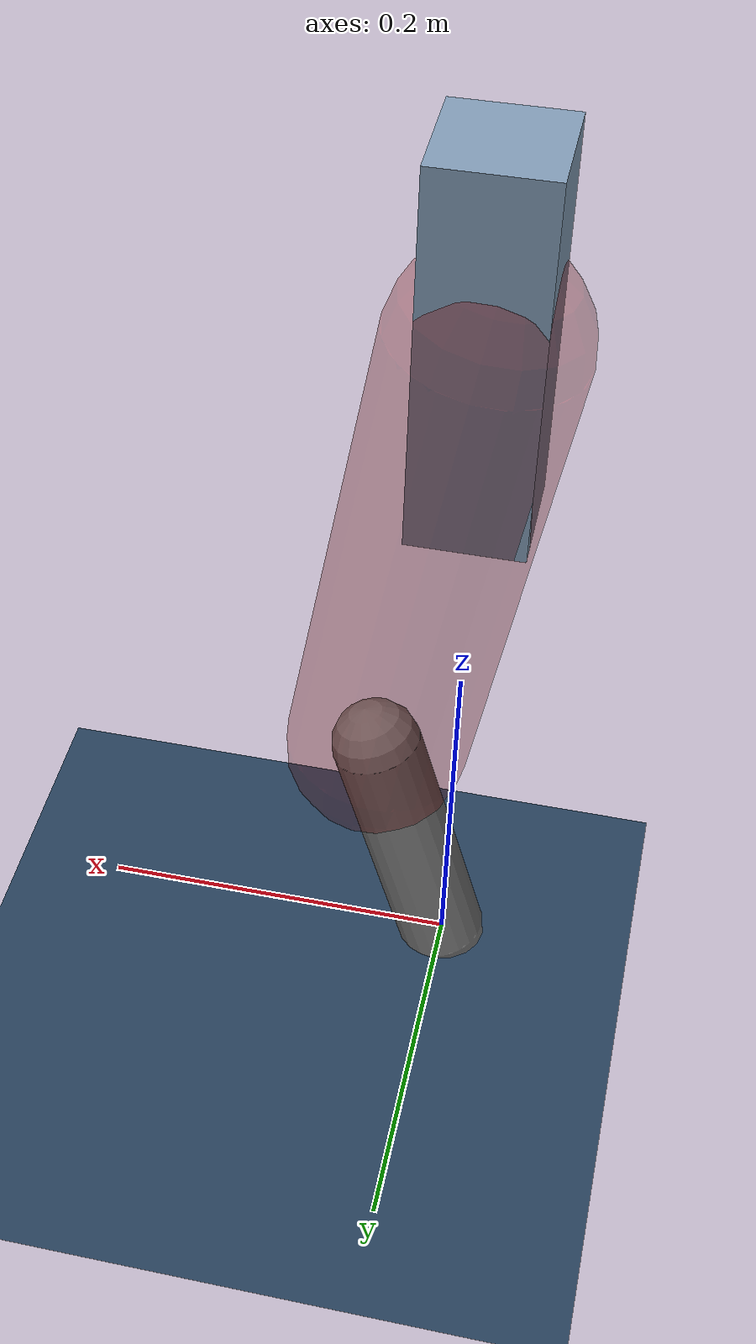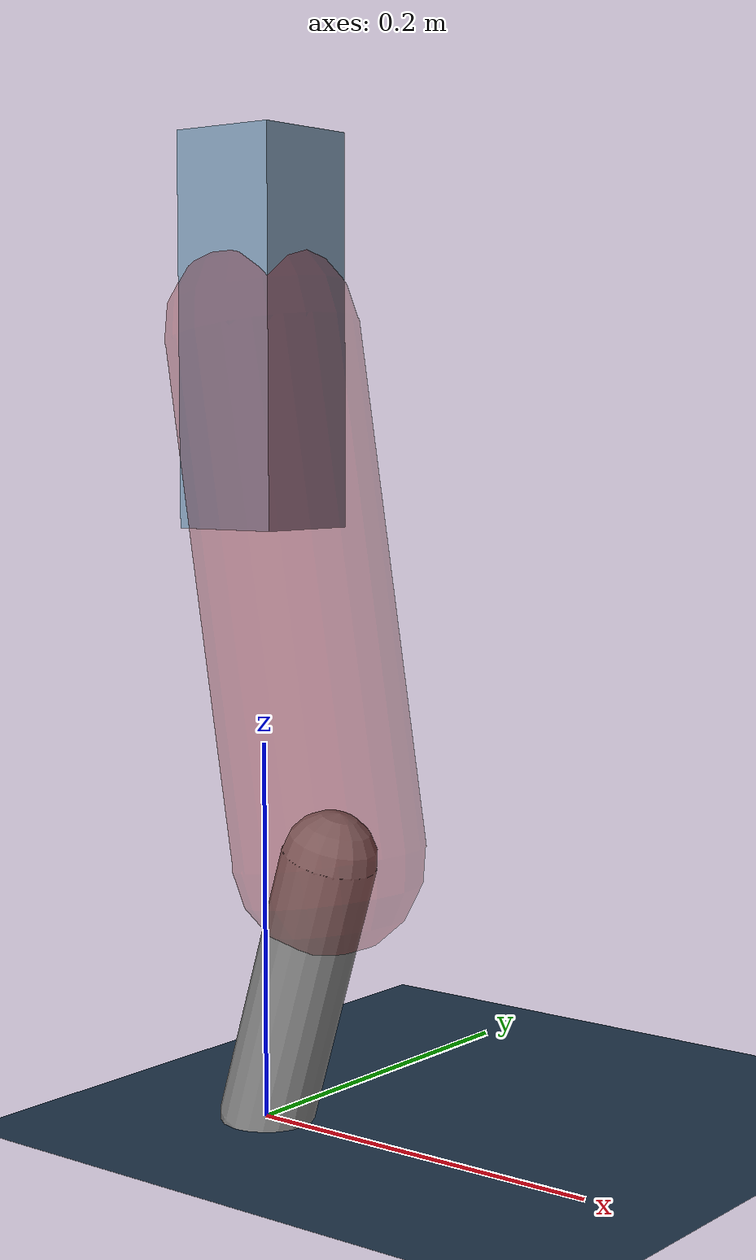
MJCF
<mujoco model="Hopper2D">
	<compiler inertiafromgeom="true" angle="radian" />
	<option timestep="0.001" integrator="implicit" cone="elliptic" solver="Newton" tolerance="1e-10" />

	<default>
		<geom contype="1" conaffinity="1" condim="3" friction="2 0.005 0.0001" solref="0.005 1" />
		<joint limited="true" damping="0.1" />
	</default>

	<asset>
		<texture name="skybox" type="skybox" builtin="gradient" rgb1=".4 .6 .8" rgb2="0 0 0" width="800" height="800" />
		<texture name="grid" type="2d" builtin="checker" rgb1=".1 .2 .3" rgb2=".2 .3 .4" width="300" height="300" mark="edge" markrgb=".2 .3 .4" />
		<material name="ground" texture="grid" texrepeat="1 1" texuniform="true" reflectance="0.1" />
		<material name="leg" rgba="0.5 0.6 0.7 1" />
	</asset>

	<worldbody>

		<geom name="floor" type="plane" size="5 5 0.25" material="ground" />

		<light directional="false" diffuse="0.8 0.8 0.8" specular="0.3 0.3 0.3" pos="0 0 2" dir="0 0 -1" />
		<light mode="targetbodycom" target="base" directional="false" diffuse="0.8 0.8 0.8" specular="0.3 0.3 0.3" pos="0 0 2" dir="0 0 -1" />

		<camera name="fixed" pos="0 -2 1" xyaxes="1 0 0 0 0 1" />
		<camera name="tracking" mode="trackcom" pos="0 -3 1" />

		<body name="root" pos="0 0 0.4124686627361255">
			<joint name="slide_x" type="slide" axis="1 0 0" range="-100 100" />
			<joint name="slide_z" type="slide" axis="0 0 1" range="0 10" />

			<body name="base" pos="0 0 0">
				<geom name="torso" type="box" size="0.03 0.03 0.1" mass="1.861" material="leg" />

				<body name="link1" pos="0 0 0" euler="0 1.4090806449802842 0">
					<joint type="hinge" axis="0 -1 0" pos="0 0 0" name="hinge1" limited="true" range="-3.14 3.14" stiffness="0" damping="0.1" />
					<geom name="thigh" type="capsule" fromto="0 0 0 0.2714062648540324 0 0" size="0.05" rgba="0.5 0 0 0.3" mass="0.9123562886204842" />

					<body name="link2" pos="0.2714062648540324 0 0" euler="0 0.45519210265499194 0">
						<joint type="hinge" axis="0 -1 0" pos="0 0 0" name="hinge2" limited="true" range="-3.14 3.14" stiffness="0" damping="0.1" />
						<geom name="shank" type="capsule" fromto="0 0 0 0.1510623978820931 0 0" size="0.025" mass="0.3586561580938838" />

					</body>
				</body>
			</body>
		</body>
	</worldbody>

	<actuator>
		<motor name="torque1" joint="hinge1" ctrlrange="-67.21726297557346 67.21726297557346" ctrllimited="true" gear="1" />
		<motor name="torque2" joint="hinge2" ctrlrange="-38.225017891107115 38.225017891107115" ctrllimited="true" gear="1" />
	</actuator>
</mujoco>
